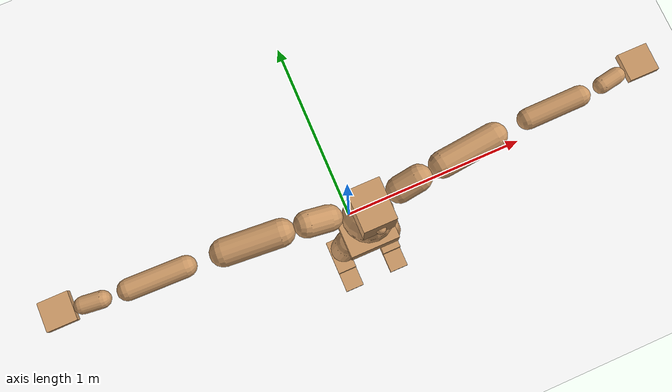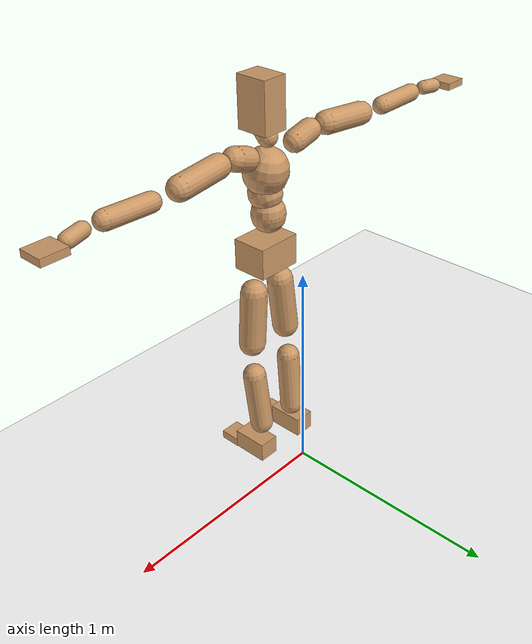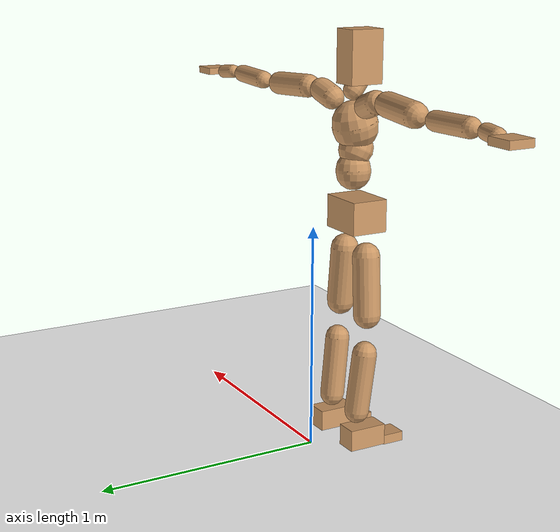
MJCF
<mujoco model="humanoid">
  <option integrator="implicitfast" />

  <visual>
    <global offwidth="1280" offheight="960" />
    <headlight active="1" ambient="0.34 0.34 0.34" diffuse="0.5 0.5 0.5" />
  </visual>

  <default>
    <joint damping="2" stiffness="2" armature="0.01" limited="true" solimplimit="0 .99 .01" />
    <geom condim="1" friction="0.7 0.005 0.0001" solimp=".99 .99 .003" solref="0.015 1" margin="0.001" rgba="0.8 0.6 .4 1" />
    <default class="smplcontact">
      <geom condim="3" friction="1. 0.005 0.0001" solref="0.015 1" solimp="0.98 0.98 0.001" priority="1" />
    </default>
    <default class="stiff_medium">
      <joint stiffness="10" />
    </default>
    <default class="stiff_medium_higher">
      <joint stiffness="50" />
    </default>
    <default class="stiff_high">
      <joint stiffness="100" />
    </default>
  </default>

  <asset>
    <texture type="skybox" builtin="gradient" rgb1="0.99 0.99 0.99" rgb2="0.608 0.828 0.892" width="100" />
    <texture builtin="flat" height="1278" mark="cross" markrgb="1 1 1" name="texgeom" random="0.01" rgb1="0.8 0.6 0.4" rgb2="0.8 0.6 0.4" type="cube" width="127" />
    <texture name="texplane" type="2d" builtin="checker" markrgb="1 1 1" rgb1="0.756 0.772 0.76" rgb2="0.6 0.6 0.6" width="100" height="100" />
    <material name="MatPlane" reflectance="0.5" texture="texplane" texrepeat="1 1" texuniform="true" />
    <material name="geom" texture="texgeom" texuniform="true" />
  </asset>

  <worldbody>
    <light name="tracking_light" pos="0 0 7" dir="0 0 -1" directional="true" cutoff="100" exponent="1" diffuse="1 1 1" specular="0.1 0.1 0.1" mode="trackcom" />
    <camera name="back" pos="0 3 2.4" xyaxes="-1 0 0 0 -1 2" mode="trackcom" />
    <camera name="side" pos="-3 0 2.4" xyaxes="0 -1 0 1 0 2" mode="trackcom" />
    <camera name="front_side" pos="-2.8 -2.8 0.8" xyaxes="0.5 -0.5 0 0.1 0.1 1" mode="trackcom" />
    <geom condim="3" name="floor" pos="0 0 0" rgba="1 1 1 1" size="100 100 .2" type="plane" material="MatPlane" />
    <body name="Pelvis" pos="-0.0018 -0.2233 1.05109" euler="90 0 0">
      <site name="Pelvis" size="0.01" />
      <freejoint name="Pelvis" />
      <geom type="box" pos="-0.0000 -0.0121 -0.0055" size="0.1069 0.0722 0.083" quat="1.0000 0.0000 0.0000 0.0000" density="3165.830099" name="Pelvis" />
      <body name="L_Hip" pos="0.0781875 -0.102825 -0.00765">
        <joint name="L_Hip_x" type="hinge" pos="0 0 0" axis="1 0 0" stiffness="12.190417346938776" range="-160.0 22.92" class="stiff_medium" damping="19.23943835853268" armature="0.013495335550763793"/>
        <joint name="L_Hip_y" type="hinge" pos="0 0 0" axis="0 1 0" stiffness="12.1624156122449" range="-70.0 70.0" class="stiff_medium" damping="12.013485255911053" armature="0.011866378571103066"/>
        <joint name="L_Hip_z" type="hinge" pos="0 0 0" axis="0 0 1" stiffness="12.164813061224491" range="-28.65 90.0" class="stiff_medium" damping="12.81394800146982" armature="0.013497721876857561"/>
        <geom type="capsule" density="2040.816327" fromto="0.0077625 -0.084375 -0.0010125 0.030825 -0.337725 -0.00405" size="0.0615" name="L_Hip" />
        <body name="L_Knee" pos="0.0385875 -0.4221 -0.0050625">
          <joint name="L_Knee_x" type="hinge" pos="0 0 0" axis="1 0 0" range="-5.16 171.89" damping="10.07682386271326" armature="0.013188848617403121" stiffness="2.4059714693877554"/>
          <joint name="L_Knee_y" type="hinge" pos="0 0 0" axis="0 1 0" range="-4.58 6.88" damping="9.486100019400165" armature="0.011596019506642559" stiffness="2.4250264693877552"/>
          <joint name="L_Knee_z" type="hinge" pos="0 0 0" axis="0 0 1" range="-6.88 4.58" damping="10.063496829521752" armature="0.013200099383969112" stiffness="2.3975664285714284"/>
          <geom type="capsule" density="1234.567901" fromto="-0.0030375 -0.08955 -0.0097875 -0.0122625 -0.3582 -0.039375" size="0.0541" name="L_Knee" />
          <body name="L_Ankle" pos="-0.0153 -0.44775 -0.0491625">
            <joint name="L_Ankle_x" type="hinge" pos="0 0 0" axis="1 0 0" range="-45.84 45.84" class="stiff_medium" damping="6.89753281842307" armature="0.011747130867095158" stiffness="11.250018673469388"/>
            <joint name="L_Ankle_y" type="hinge" pos="0 0 0" axis="0 1 0" range="-74.48 22.92" class="stiff_medium" damping="3.4392113884775433" armature="0.011682135831686723" stiffness="11.250011836734695"/>
            <joint name="L_Ankle_z" type="hinge" pos="0 0 0" axis="0 0 1" range="-4.58 4.58" class="stiff_medium" damping="6.751978545825224" armature="0.01125659611932941" stiffness="11.25"/>
            <geom type="box" pos="0.0262125 -0.0268875 0.027225" size="0.0483 0.0464 0.085" quat="1.0000 0.0000 0.0000 0.0000" density="449.071558" name="L_Ankle" class="smplcontact" />
            <body name="L_Toe" pos="0.0297 -0.062775 0.134213">
              <joint name="L_Toe_x" type="hinge" pos="0 0 0" axis="1 0 0" range="-91.67 22.92" armature="0.011009874139728062" damping="2.2258578936845064" stiffness="2.25"/>
              <joint name="L_Toe_y" type="hinge" pos="0 0 0" axis="0 1 0" range="-4.58 4.58" armature="0.010711537859158194" damping="2.1954935747164432" stiffness="2.25"/>
              <joint name="L_Toe_z" type="hinge" pos="0 0 0" axis="0 0 1" range="-4.58 4.58" armature="0.010108317957716393" damping="2.132778254055582" stiffness="2.25"/>
              <geom type="box" pos="-0.003375 0.0061875 0.0279" size="0.0478 0.02 0.0496" quat="1.0000 0.0000 0.0000 0.0000" density="423.206892" name="L_Toe" class="smplcontact" />
            </body>
          </body>
        </body>
      </body>
      <body name="R_Hip" pos="-0.0761625 -0.101813 -0.0048375">
        <joint name="R_Hip_x" type="hinge" pos="0 0 0" axis="1 0 0" stiffness="12.190417346938776" range="-160.0 22.92" class="stiff_medium" damping="19.23943835853268" armature="0.013495335550763793"/>
        <joint name="R_Hip_y" type="hinge" pos="0 0 0" axis="0 1 0" stiffness="12.1624156122449" range="-70.0 70.0" class="stiff_medium" damping="12.013485255911053" armature="0.011866378571103066"/>
        <joint name="R_Hip_z" type="hinge" pos="0 0 0" axis="0 0 1" stiffness="12.164813061224491" range="-90.0 28.65" class="stiff_medium" damping="12.81394800146982" armature="0.013497721876857561"/>
        <geom type="capsule" density="2040.816327" fromto="-0.0086625 -0.0860625 -0.002025 -0.034425 -0.344362 -0.0079875" size="0.0606" name="R_Hip" />
        <body name="R_Knee" pos="-0.0430875 -0.430425 -0.0100125">
          <joint name="R_Knee_x" type="hinge" pos="0 0 0" axis="1 0 0" range="-5.16 171.89" damping="10.07682386271326" armature="0.013188848617403121" stiffness="2.4059714693877554"/>
          <joint name="R_Knee_y" type="hinge" pos="0 0 0" axis="0 1 0" range="-6.88 4.58" damping="9.486100019400165" armature="0.011596019506642559" stiffness="2.4250264693877552"/>
          <joint name="R_Knee_z" type="hinge" pos="0 0 0" axis="0 0 1" range="-4.58 6.88" damping="10.063496829521752" armature="0.013200099383969112" stiffness="2.3975664285714284"/>
          <geom type="capsule" density="1234.567901" fromto="0.0036 -0.0896625 -0.0095625 0.014175 -0.358537 -0.038025" size="0.0541" name="R_Knee" />
          <body name="R_Ankle" pos="0.017775 -0.4482 -0.0475875">
            <joint name="R_Ankle_x" type="hinge" pos="0 0 0" axis="1 0 0" range="-45.84 45.84" class="stiff_medium" damping="6.89753281842307" armature="0.011747130867095158" stiffness="11.250018673469388"/>
            <joint name="R_Ankle_y" type="hinge" pos="0 0 0" axis="0 1 0" range="-22.92 74.48" class="stiff_medium" damping="3.4392113884775433" armature="0.011682135831686723" stiffness="11.250011836734695"/>
            <joint name="R_Ankle_z" type="hinge" pos="0 0 0" axis="0 0 1" range="-4.58 4.58" class="stiff_medium" damping="6.751978545825224" armature="0.01125659611932941" stiffness="11.25"/>
            <geom type="box" pos="-0.02385 -0.019575 0.0288" size="0.0483 0.0478 0.0865" quat="1.0000 0.0000 0.0000 0.0000" density="434.700981" name="R_Ankle" class="smplcontact" />
            <body name="R_Toe" pos="-0.028575 -0.0541125 0.138713">
              <joint name="R_Toe_x" type="hinge" pos="0 0 0" axis="1 0 0" range="-91.67 22.92" armature="0.011009874139728062" damping="2.2258578936845064" stiffness="2.25"/>
              <joint name="R_Toe_y" type="hinge" pos="0 0 0" axis="0 1 0" range="-4.58 4.58" armature="0.010711537859158194" damping="2.1954935747164432" stiffness="2.25"/>
              <joint name="R_Toe_z" type="hinge" pos="0 0 0" axis="0 0 1" range="-4.58 4.58" armature="0.010108317957716393" damping="2.132778254055582" stiffness="2.25"/>
              <geom type="box" pos="0.004725 0.0050625 0.0255375" size="0.0479 0.0216 0.0493" quat="1.0000 0.0000 0.0000 0.0000" density="407.384095" name="R_Toe" class="smplcontact" />
            </body>
          </body>
        </body>
      </body>
      <body name="Torso" pos="-0.0025 0.109 -0.0267">
        <joint name="Torso_x" type="hinge" pos="0 0 0" axis="1 0 0" range="-25.78 57.3" class="stiff_medium" damping="17.816617842535415" armature="0.01220444282408803" stiffness="11.55979291666667"/>
        <joint name="Torso_y" type="hinge" pos="0 0 0" axis="0 1 0" range="-57.3 57.3" class="stiff_high" damping="32.66648617457636" armature="0.023482633249027437" stiffness="113.6051595744681"/>
        <joint name="Torso_z" type="hinge" pos="0 0 0" axis="0 0 1" range="-34.38 34.38" class="stiff_high" damping="26.532055594632826" armature="0.016035100718302126" stiffness="109.75141136363638"/>
        <geom type="capsule" density="2040.816327" fromto="0.0025 0.0608 0.0005 0.003 0.0743 0.0006" size="0.0769" name="Torso" />
        <body name="Spine" pos="0.0055 0.1352 0.0011">
          <joint name="Spine_x" type="hinge" pos="0 0 0" axis="1 0 0" stiffness="11.652306458333332" range="-25.78 57.3" class="stiff_medium" damping="18.346849955919502" armature="0.012838923235543205"/>
          <joint name="Spine_y" type="hinge" pos="0 0 0" axis="0 1 0" stiffness="12.490174523809525" range="-57.3 57.3" class="stiff_high" damping="13.727844217436889" armature="0.02357524439747789"/>
          <joint name="Spine_z" type="hinge" pos="0 0 0" axis="0 0 1" stiffness="24.140002666666668" range="-34.38 34.38" class="stiff_high" damping="18.060617405335822" armature="0.018767022520783626"/>
          <geom type="capsule" density="2040.816327" fromto="0.0007 0.0238 0.0114 0.0008 0.0291 0.014" size="0.0755" name="Spine" />
          <body name="Chest" pos="0.0015 0.0529 0.0254">
            <joint name="Chest_x" type="hinge" pos="0 0 0" axis="1 0 0" stiffness="12.52777088888889" range="-25.78 57.3" class="stiff_medium" damping="19.3234206846418" armature="0.013246821899117765"/>
            <joint name="Chest_y" type="hinge" pos="0 0 0" axis="0 1 0" stiffness="14.856075609756099" range="-57.3 57.3" class="stiff_high" damping="14.973397185345428" armature="0.023580695741040242"/>
            <joint name="Chest_z" type="hinge" pos="0 0 0" axis="0 0 1" stiffness="24.504841860465113" range="-34.38 34.38" class="stiff_high" damping="18.77641315249792" armature="0.01998208789833815"/>
            <geom type="capsule" density="2040.816327" fromto="-0.0009 0.0682 -0.0173 -0.001 0.0833 -0.0212" size="0.1002" name="Chest" />
            <body name="Neck" pos="-0.0028 0.2139 -0.0429">
              <joint name="Neck_x" type="hinge" pos="0 0 0" axis="1 0 0" range="-28.65 57.3" class="stiff_medium_higher" damping="10.000000000000004" armature="0.01000000000000001" stiffness="50.0"/>
              <joint name="Neck_y" type="hinge" pos="0 0 0" axis="0 1 0" range="-40.11 40.11" class="stiff_medium_higher" damping="10.0" armature="0.01" stiffness="50.0"/>
              <joint name="Neck_z" type="hinge" pos="0 0 0" axis="0 0 1" range="-40.11 40.11" class="stiff_medium_higher" damping="10.000000000000009" armature="0.010000000000000018" stiffness="50.0"/>
              <geom type="capsule" density="1000" fromto="0.001 0.013 0.0103 0.0041 0.052 0.0411" size="0.0436" name="Neck" />
              <body name="Head" pos="0.0052 0.065 0.0513">
                <joint name="Head_x" type="hinge" pos="0 0 0" axis="1 0 0" range="-28.65 57.3" class="stiff_medium_higher" damping="2.000000000000005" armature="0.010000000000000049" stiffness="50.0"/>
                <joint name="Head_y" type="hinge" pos="0 0 0" axis="0 1 0" range="-40.11 40.11" class="stiff_medium_higher" damping="2.0" armature="0.010000000000000002" stiffness="50.0"/>
                <joint name="Head_z" type="hinge" pos="0 0 0" axis="0 0 1" range="-40.11 40.11" class="stiff_medium_higher" damping="2.0000000000000053" armature="0.010000000000000056" stiffness="50.0"/>
                <geom type="box" pos="-0.0042 0.0876 -0.0116" size="0.0606 0.1154 0.076" quat="1.0000 0.0000 0.0000 0.0000" density="1018.069894" name="Head" />
                <geom type="capsule" name="nose" size="0.02 0.01" pos="0 0.07 0.05" quat="1 0 0 0" mass="0" contype="0" conaffinity="0" />
              </body>
            </body>
            <body name="L_Thorax" pos="0.11032 0.17038 -0.04774">
              <joint name="L_Thorax_x" type="hinge" pos="0 0 0" axis="1 0 0" range="-10.89 4.58" class="stiff_medium_higher" damping="36.240858058789826" armature="0.018856138634744224" stiffness="87.06712295918368"/>
              <joint name="L_Thorax_y" type="hinge" pos="0 0 0" axis="0 1 0" range="-28.65 17.19" class="stiff_medium_higher" damping="40.96620891880995" armature="0.023898132129905863" stiffness="87.78041020408163"/>
              <joint name="L_Thorax_z" type="hinge" pos="0 0 0" axis="0 0 1" range="-31.51 40.11" class="stiff_medium_higher" damping="40.96835729355361" armature="0.023902786052476355" stiffness="87.77252448979593"/>
              <geom type="capsule" density="1000" fromto="0.02548 0.00854 -0.00252 0.10192 0.03416 -0.00994" size="0.0521" name="L_Thorax" />
              <body name="L_Shoulder" pos="0.1274 0.0427 -0.01246">
                <joint name="L_Shoulder_x" type="hinge" pos="0 0 0" axis="1 0 0" range="-97.4 97.4" class="stiff_medium" damping="10.216467793124714" armature="0.016750975720821137" stiffness="17.30848"/>
                <joint name="L_Shoulder_y" type="hinge" pos="0 0 0" axis="0 1 0" range="-108.86 80.21" class="stiff_medium" damping="12.210584630805666" armature="0.023662310849895677" stiffness="17.503030918367347"/>
                <joint name="L_Shoulder_z" type="hinge" pos="0 0 0" axis="0 0 1" range="-97.4 85.94" class="stiff_medium" damping="12.207996623471661" armature="0.023667800947755637" stiffness="17.491553877551024"/>
                <geom type="capsule" density="1000" fromto="0.07266 -0.00364 -0.0077 0.29078 -0.01428 -0.0308" size="0.0517" name="L_Shoulder" />
                <body name="L_Elbow" pos="0.36344 -0.01792 -0.0385">
                  <joint name="L_Elbow_x" type="hinge" pos="0 0 0" axis="1 0 0" range="-17.19 4.58" damping="7.586581525572945" armature="0.013620348817447635" stiffness="3.380601775510204"/>
                  <joint name="L_Elbow_y" type="hinge" pos="0 0 0" axis="0 1 0" range="-180.0 17.19" damping="9.758671052618116" armature="0.022523674987219192" stiffness="3.382455510204082"/>
                  <joint name="L_Elbow_z" type="hinge" pos="0 0 0" axis="0 0 1" range="-100.84 4.58" damping="9.760335979040736" armature="0.022552387617329524" stiffness="3.3793019183673465"/>
                  <geom type="capsule" density="1000" fromto="0.06972 0.00252 -0.00028 0.27916 0.01008 -0.00126" size="0.0405" name="L_Elbow" />
                  <body name="L_Wrist" pos="0.34888 0.0126 -0.00168">
                    <joint name="L_Wrist_x" type="hinge" pos="0 0 0" axis="1 0 0" range="-180.0 22.92" armature="0.01316855013958465" damping="2.8121939405270386" stiffness="3.002773530612245"/>
                    <joint name="L_Wrist_y" type="hinge" pos="0 0 0" axis="0 1 0" range="-17.19 17.19" armature="0.019145926143816046" damping="3.4076565933193717" stiffness="3.0325311428571426"/>
                    <joint name="L_Wrist_z" type="hinge" pos="0 0 0" axis="0 0 1" range="-22.92 22.92" armature="0.01946864082917072" damping="3.4294485001747024" stiffness="3.0205285306122445"/>
                    <geom type="capsule" density="1000" fromto="0.02352 -0.00224 -0.0042 0.09408 -0.0091 -0.0168" size="0.0318" name="L_Wrist" class="smplcontact" />
                    <body name="L_Hand" pos="0.1176 -0.01148 -0.02086">
                      <joint name="L_Hand_x" type="hinge" pos="0 0 0" axis="1 0 0" range="-17.19 17.19" armature="0.010418235140997597" damping="2.415411285673447" stiffness="2.8000000000000003"/>
                      <joint name="L_Hand_y" type="hinge" pos="0 0 0" axis="0 1 0" range="-51.57 51.57" armature="0.015057977012994219" damping="2.903871058996381" stiffness="2.8000000000000003"/>
                      <joint name="L_Hand_z" type="hinge" pos="0 0 0" axis="0 0 1" range="-91.67 91.67" armature="0.016294763602145653" damping="3.020772685456747" stiffness="2.8000000000000003"/>
                      <geom type="box" pos="0.06902 0.0014 -0.00812" size="0.0585 0.0158 0.0538" quat="1.0000 0.0000 0.0000 0.0000" density="400.552564" name="L_Hand" class="smplcontact" />
                    </body>
                  </body>
                </body>
              </body>
            </body>
            <body name="R_Thorax" pos="-0.11452 0.16632 -0.05404">
              <joint name="R_Thorax_x" type="hinge" pos="0 0 0" axis="1 0 0" range="-10.89 4.58" class="stiff_medium_higher" damping="36.240858058789826" armature="0.018856138634744224" stiffness="87.06712295918368"/>
              <joint name="R_Thorax_y" type="hinge" pos="0 0 0" axis="0 1 0" range="-17.19 28.65" class="stiff_medium_higher" damping="40.96620891880995" armature="0.023898132129905863" stiffness="87.78041020408163"/>
              <joint name="R_Thorax_z" type="hinge" pos="0 0 0" axis="0 0 1" range="-40.11 31.51" class="stiff_medium_higher" damping="40.96835729355361" armature="0.023902786052476355" stiffness="87.77252448979593"/>
              <geom type="capsule" density="1000" fromto="-0.02688 0.0091 -0.00252 -0.10752 0.0364 -0.01022" size="0.0511" name="R_Thorax" />
              <body name="R_Shoulder" pos="-0.1344 0.04564 -0.01274">
                <joint name="R_Shoulder_x" type="hinge" pos="0 0 0" axis="1 0 0" range="-97.4 97.4" class="stiff_medium" damping="10.216467793124714" armature="0.016750975720821137" stiffness="17.30848"/>
                <joint name="R_Shoulder_y" type="hinge" pos="0 0 0" axis="0 1 0" range="-80.21 108.86" class="stiff_medium" damping="12.210584630805666" armature="0.023662310849895677" stiffness="17.503030918367347"/>
                <joint name="R_Shoulder_z" type="hinge" pos="0 0 0" axis="0 0 1" range="-85.94 97.4" class="stiff_medium" damping="12.207996623471661" armature="0.023667800947755637" stiffness="17.491553877551024"/>
                <geom type="capsule" density="1000" fromto="-0.07098 -0.00378 -0.00602 -0.2842 -0.01498 -0.02394" size="0.0531" name="R_Shoulder" />
                <body name="R_Elbow" pos="-0.35518 -0.01862 -0.02996">
                  <joint name="R_Elbow_x" type="hinge" pos="0 0 0" axis="1 0 0" range="-17.19 4.58" damping="7.586581525572945" armature="0.013620348817447635" stiffness="3.380601775510204"/>
                  <joint name="R_Elbow_y" type="hinge" pos="0 0 0" axis="0 1 0" range="-17.19 180.0" damping="9.758671052618116" armature="0.022523674987219192" stiffness="3.382455510204082"/>
                  <joint name="R_Elbow_z" type="hinge" pos="0 0 0" axis="0 0 1" range="-4.58 100.84" damping="9.760335979040736" armature="0.022552387617329524" stiffness="3.3793019183673465"/>
                  <geom type="capsule" density="1000" fromto="-0.07154 0.00224 -0.00154 -0.28588 0.00868 -0.00616" size="0.0408" name="R_Elbow" />
                  <body name="R_Wrist" pos="-0.35742 0.01092 -0.00784">
                    <joint name="R_Wrist_x" type="hinge" pos="0 0 0" axis="1 0 0" range="-180.0 22.92" armature="0.01316855013958465" damping="2.8121939405270386" stiffness="3.002773530612245"/>
                    <joint name="R_Wrist_y" type="hinge" pos="0 0 0" axis="0 1 0" range="-17.19 17.19" armature="0.019145926143816046" damping="3.4076565933193717" stiffness="3.0325311428571426"/>
                    <joint name="R_Wrist_z" type="hinge" pos="0 0 0" axis="0 0 1" range="-22.92 22.92" armature="0.01946864082917072" damping="3.4294485001747024" stiffness="3.0205285306122445"/>
                    <geom type="capsule" density="1000" fromto="-0.02366 -0.00168 -0.00294 -0.09478 -0.00686 -0.01162" size="0.0326" name="R_Wrist" class="smplcontact" />
                    <body name="R_Hand" pos="-0.11844 -0.00854 -0.01442">
                      <joint name="R_Hand_x" type="hinge" pos="0 0 0" axis="1 0 0" range="-17.19 17.19" armature="0.010418235140997597" damping="2.415411285673447" stiffness="2.8000000000000003"/>
                      <joint name="R_Hand_y" type="hinge" pos="0 0 0" axis="0 1 0" range="-51.57 51.57" armature="0.015057977012994219" damping="2.903871058996381" stiffness="2.8000000000000003"/>
                      <joint name="R_Hand_z" type="hinge" pos="0 0 0" axis="0 0 1" range="-91.67 91.67" armature="0.016294763602145653" damping="3.020772685456747" stiffness="2.8000000000000003"/>
                      <geom type="box" pos="-0.06468 -0.00126 -0.01106" size="0.0569 0.0164 0.0546" quat="1.0000 0.0000 0.0000 0.0000" density="403.679611" name="R_Hand" class="smplcontact" />
                    </body>
                  </body>
                </body>
              </body>
            </body>
          </body>
        </body>
      </body>
    </body>
  </worldbody>
  <actuator>
    <general name="L_Hip_x" joint="L_Hip_x" biastype="affine" gainprm="350.267339766903" biasprm="-262.4898695344799 -219.42751224489797 -2.565258447804357" ctrllimited="true" ctrlrange="-1 1" forcerange="-438.85502448979594 438.85502448979594" />
    <general name="L_Hip_y" joint="L_Hip_y" biastype="affine" gainprm="267.4654887613407" biasprm="0.0 -218.9234810204082 -2.4026970511822108" ctrllimited="true" ctrlrange="-1 1" forcerange="-437.8469620408164 437.8469620408164" />
    <general name="L_Hip_z" joint="L_Hip_z" biastype="affine" gainprm="226.72168417679922" biasprm="117.23030193212499 -218.96663510204084 -2.562789600293964" ctrllimited="true" ctrlrange="-1 1" forcerange="-437.9332702040817 437.9332702040817" />
    <general name="L_Knee_x" joint="L_Knee_x" biastype="affine" gainprm="334.5617487428154" biasprm="315.0606064269393 -216.53743224489799 -2.519205965678315" ctrllimited="true" ctrlrange="-1 1" forcerange="-433.07486448979597 433.07486448979597" />
    <general name="L_Knee_y" joint="L_Knee_y" biastype="affine" gainprm="21.82684590193453" biasprm="4.380606071068885 -218.25238224489797 -2.3715250048500414" ctrllimited="true" ctrlrange="-1 1" forcerange="-436.50476448979595 436.50476448979595" />
    <general name="L_Knee_z" joint="L_Knee_z" biastype="affine" gainprm="21.579687329883924" biasprm="-4.331001820133772 -215.78097857142856 -2.515874207380438" ctrllimited="true" ctrlrange="-1 1" forcerange="-431.5619571428571 431.5619571428571" />
    <general name="L_Ankle_x" joint="L_Ankle_x" biastype="affine" gainprm="81.00610103169612" biasprm="0.0 -101.2501680612245 -2.2991776061410234" ctrllimited="true" ctrlrange="-1 1" forcerange="-202.500336122449 202.500336122449" />
    <general name="L_Ankle_y" joint="L_Ankle_y" biastype="affine" gainprm="86.06009430266938" biasprm="-45.557068400879196 -101.25010653061226 -2.292807592318362" ctrllimited="true" ctrlrange="-1 1" forcerange="-202.5002130612245 202.5002130612245" />
    <general name="L_Ankle_z" joint="L_Ankle_z" biastype="affine" gainprm="8.093528073810704" biasprm="0.0 -101.25 -2.250659515275075" ctrllimited="true" ctrlrange="-1 1" forcerange="-202.5 202.5" />
    <general name="L_Toe_x" joint="L_Toe_x" biastype="affine" gainprm="80.99889798934223" biasprm="-48.59651136021711 -81.0 -0.8903431574738025" ctrllimited="true" ctrlrange="-1 1" forcerange="-162.0 162.0" />
    <general name="L_Toe_y" joint="L_Toe_y" biastype="affine" gainprm="6.474822459048563" biasprm="0.0 -81.0 -0.8781974298865773" ctrllimited="true" ctrlrange="-1 1" forcerange="-162.0 162.0" />
    <general name="L_Toe_z" joint="L_Toe_z" biastype="affine" gainprm="6.474822459048563" biasprm="0.0 -81.0 -0.8531113016222328" ctrllimited="true" ctrlrange="-1 1" forcerange="-162.0 162.0" />
    <general name="R_Hip_x" joint="R_Hip_x" biastype="affine" gainprm="350.267339766903" biasprm="-262.4898695344799 -219.42751224489797 -2.565258447804357" ctrllimited="true" ctrlrange="-1 1" forcerange="-438.85502448979594 438.85502448979594" />
    <general name="R_Hip_y" joint="R_Hip_y" biastype="affine" gainprm="267.4654887613407" biasprm="0.0 -218.9234810204082 -2.4026970511822108" ctrllimited="true" ctrlrange="-1 1" forcerange="-437.8469620408164 437.8469620408164" />
    <general name="R_Hip_z" joint="R_Hip_z" biastype="affine" gainprm="226.72168417679922" biasprm="-117.23030193212499 -218.96663510204084 -2.562789600293964" ctrllimited="true" ctrlrange="-1 1" forcerange="-437.9332702040817 437.9332702040817" />
    <general name="R_Knee_x" joint="R_Knee_x" biastype="affine" gainprm="334.5617487428154" biasprm="315.0606064269393 -216.53743224489799 -2.519205965678315" ctrllimited="true" ctrlrange="-1 1" forcerange="-433.07486448979597 433.07486448979597" />
    <general name="R_Knee_y" joint="R_Knee_y" biastype="affine" gainprm="21.82684590193453" biasprm="-4.380606071068885 -218.25238224489797 -2.3715250048500414" ctrllimited="true" ctrlrange="-1 1" forcerange="-436.50476448979595 436.50476448979595" />
    <general name="R_Knee_z" joint="R_Knee_z" biastype="affine" gainprm="21.579687329883924" biasprm="4.331001820133772 -215.78097857142856 -2.515874207380438" ctrllimited="true" ctrlrange="-1 1" forcerange="-431.5619571428571 431.5619571428571" />
    <general name="R_Ankle_x" joint="R_Ankle_x" biastype="affine" gainprm="81.00610103169612" biasprm="0.0 -101.2501680612245 -2.2991776061410234" ctrllimited="true" ctrlrange="-1 1" forcerange="-202.500336122449 202.500336122449" />
    <general name="R_Ankle_y" joint="R_Ankle_y" biastype="affine" gainprm="86.06009430266938" biasprm="45.557068400879196 -101.25010653061226 -2.292807592318362" ctrllimited="true" ctrlrange="-1 1" forcerange="-202.5002130612245 202.5002130612245" />
    <general name="R_Ankle_z" joint="R_Ankle_z" biastype="affine" gainprm="8.093528073810704" biasprm="0.0 -101.25 -2.250659515275075" ctrllimited="true" ctrlrange="-1 1" forcerange="-202.5 202.5" />
    <general name="R_Toe_x" joint="R_Toe_x" biastype="affine" gainprm="80.99889798934223" biasprm="-48.59651136021711 -81.0 -0.8903431574738025" ctrllimited="true" ctrlrange="-1 1" forcerange="-162.0 162.0" />
    <general name="R_Toe_y" joint="R_Toe_y" biastype="affine" gainprm="6.474822459048563" biasprm="0.0 -81.0 -0.8781974298865773" ctrllimited="true" ctrlrange="-1 1" forcerange="-162.0 162.0" />
    <general name="R_Toe_z" joint="R_Toe_z" biastype="affine" gainprm="6.474822459048563" biasprm="0.0 -81.0 -0.8531113016222328" ctrllimited="true" ctrlrange="-1 1" forcerange="-162.0 162.0" />
    <general name="Torso_x" joint="Torso_x" biastype="affine" gainprm="201.14310764492842" biasprm="76.31235860577928 -277.43503000000004 -4.751098091342778" ctrllimited="true" ctrlrange="-1 1" forcerange="-416.1525450000001 416.1525450000001" />
    <general name="Torso_y" joint="Torso_y" biastype="affine" gainprm="272.67246693299046" biasprm="0.0 -272.65238297872344 -6.533297234915273" ctrllimited="true" ctrlrange="-1 1" forcerange="-408.9785744680852 408.9785744680852" />
    <general name="Torso_z" joint="Torso_z" biastype="affine" gainprm="158.05367395985348" biasprm="0.0 -263.4033872727273 -5.306411118926565" ctrllimited="true" ctrlrange="-1 1" forcerange="-395.10508090909093 395.10508090909093" />
    <general name="Spine_x" joint="Spine_x" biastype="affine" gainprm="202.75286496534218" biasprm="76.9230898375973 -279.655355 -4.892493321578534" ctrllimited="true" ctrlrange="-1 1" forcerange="-419.4830325 419.4830325" />
    <general name="Spine_y" joint="Spine_y" biastype="affine" gainprm="299.7862696190556" biasprm="0.0 -299.7641885714286 -6.8639221087184445" ctrllimited="true" ctrlrange="-1 1" forcerange="-449.6462828571429 449.6462828571429" />
    <general name="Spine_z" joint="Spine_z" biastype="affine" gainprm="173.82082214076556" biasprm="0.0 -289.680032 -6.020205801778608" ctrllimited="true" ctrlrange="-1 1" forcerange="-434.520048 434.520048" />
    <general name="Chest_x" joint="Chest_x" biastype="affine" gainprm="217.98615136277013" biasprm="82.70249748380492 -300.6665013333334 -5.152912182571146" ctrllimited="true" ctrlrange="-1 1" forcerange="-450.999752 450.999752" />
    <general name="Chest_y" joint="Chest_y" biastype="affine" gainprm="356.57207829543177" biasprm="0.0 -356.5458146341464 -7.486698592672714" ctrllimited="true" ctrlrange="-1 1" forcerange="-534.8187219512196 534.8187219512196" />
    <general name="Chest_z" joint="Chest_z" biastype="affine" gainprm="176.44785783296902" biasprm="0.0 -294.0581023255814 -6.258804384165973" ctrllimited="true" ctrlrange="-1 1" forcerange="-441.08715348837205 441.08715348837205" />
    <general name="Neck_x" joint="Neck_x" biastype="affine" gainprm="27.00198885760427" biasprm="9.000662952534757 -36.0 -0.8000000000000004" ctrllimited="true" ctrlrange="-1 1" forcerange="-72.0 72.0" />
    <general name="Neck_y" joint="Neck_y" biastype="affine" gainprm="25.20185626709732" biasprm="0.0 -36.0 -0.8" ctrllimited="true" ctrlrange="-1 1" forcerange="-72.0 72.0" />
    <general name="Neck_z" joint="Neck_z" biastype="affine" gainprm="25.20185626709732" biasprm="0.0 -36.0 -0.8000000000000007" ctrllimited="true" ctrlrange="-1 1" forcerange="-72.0 72.0" />
    <general name="Head_x" joint="Head_x" biastype="affine" gainprm="18.001325905069514" biasprm="6.000441968356505 -24.0 -0.800000000000002" ctrllimited="true" ctrlrange="-1 1" forcerange="-48.0 48.0" />
    <general name="Head_y" joint="Head_y" biastype="affine" gainprm="16.801237511398213" biasprm="0.0 -24.0 -0.8" ctrllimited="true" ctrlrange="-1 1" forcerange="-48.0 48.0" />
    <general name="Head_z" joint="Head_z" biastype="affine" gainprm="16.801237511398213" biasprm="0.0 -24.0 -0.8000000000000022" ctrllimited="true" ctrlrange="-1 1" forcerange="-48.0 48.0" />
    <general name="L_Thorax_x" joint="L_Thorax_x" biastype="affine" gainprm="28.21000227853141" biasprm="-11.506471517616887 -208.96109510204082 -2.899268644703186" ctrllimited="true" ctrlrange="-1 1" forcerange="-417.92219020408163 417.92219020408163" />
    <general name="L_Thorax_y" joint="L_Thorax_y" biastype="affine" gainprm="84.27540118209936" biasprm="-21.06885029552484 -210.6729844897959 -3.277296713504796" ctrllimited="true" ctrlrange="-1 1" forcerange="-421.3459689795918 421.3459689795918" />
    <general name="L_Thorax_z" joint="L_Thorax_z" biastype="affine" gainprm="131.65929338702185" biasprm="15.809409705785923 -210.6540587755102 -3.2774685834842887" ctrllimited="true" ctrlrange="-1 1" forcerange="-421.3081175510204 421.3081175510204" />
    <general name="L_Shoulder_x" joint="L_Shoulder_x" biastype="affine" gainprm="141.23310021032776" biasprm="0.0 -83.080704 -2.724391411499924" ctrllimited="true" ctrlrange="-1 1" forcerange="-166.161408 166.161408" />
    <general name="L_Shoulder_y" joint="L_Shoulder_y" biastype="affine" gainprm="138.61955280584408" biasprm="-21.005184259202586 -84.01454840816328 -3.256155901548178" ctrllimited="true" ctrlrange="-1 1" forcerange="-168.02909681632656 168.02909681632656" />
    <general name="L_Shoulder_z" joint="L_Shoulder_z" biastype="affine" gainprm="134.33037540273168" biasprm="-8.396564318290107 -83.9594586122449 -3.25546576625911" ctrllimited="true" ctrlrange="-1 1" forcerange="-167.9189172244898 167.9189172244898" />
    <general name="L_Elbow_x" joint="L_Elbow_x" biastype="affine" gainprm="23.120771250680953" biasprm="-13.39241733904855 -121.70166391836734 -1.2138530440916713" ctrllimited="true" ctrlrange="-1 1" forcerange="-243.4033278367347 243.4033278367347" />
    <general name="L_Elbow_y" joint="L_Elbow_y" biastype="affine" gainprm="209.53995807470082" biasprm="-173.0067476755517 -121.76839836734695 -1.5613873684188988" ctrllimited="true" ctrlrange="-1 1" forcerange="-243.5367967346939 243.5367967346939" />
    <general name="L_Elbow_z" joint="L_Elbow_z" biastype="affine" gainprm="111.91798423395207" biasprm="-102.19337091975173 -121.65486906122447 -1.5616537566465176" ctrllimited="true" ctrlrange="-1 1" forcerange="-243.30973812244895 243.30973812244895" />
    <general name="L_Wrist_x" joint="L_Wrist_x" biastype="affine" gainprm="31.904067455407095" biasprm="-24.696880129584795 -18.01664118367347 -1.1248775762108154" ctrllimited="true" ctrlrange="-1 1" forcerange="-36.03328236734694 36.03328236734694" />
    <general name="L_Wrist_y" joint="L_Wrist_y" biastype="affine" gainprm="5.458958141984436" biasprm="0.0 -18.195186857142858 -1.3630626373277488" ctrllimited="true" ctrlrange="-1 1" forcerange="-36.390373714285715 36.390373714285715" />
    <general name="L_Wrist_z" joint="L_Wrist_z" biastype="affine" gainprm="7.249802464681568" biasprm="0.0 -18.123171183673467 -1.371779400069881" ctrllimited="true" ctrlrange="-1 1" forcerange="-36.246342367346934 36.246342367346934" />
    <general name="L_Hand_x" joint="L_Hand_x" biastype="affine" gainprm="5.040371253419465" biasprm="0.0 -16.8 -0.9661645142693788" ctrllimited="true" ctrlrange="-1 1" forcerange="-33.6 33.6" />
    <general name="L_Hand_y" joint="L_Hand_y" biastype="affine" gainprm="15.121113760258392" biasprm="0.0 -16.8 -1.1615484235985525" ctrllimited="true" ctrlrange="-1 1" forcerange="-33.6 33.6" />
    <general name="L_Hand_z" joint="L_Hand_z" biastype="affine" gainprm="26.879047865093792" biasprm="0.0 -16.8 -1.208309074182699" ctrllimited="true" ctrlrange="-1 1" forcerange="-33.6 33.6" />
    <general name="R_Thorax_x" joint="R_Thorax_x" biastype="affine" gainprm="28.21000227853141" biasprm="-11.506471517616887 -208.96109510204082 -2.899268644703186" ctrllimited="true" ctrlrange="-1 1" forcerange="-417.92219020408163 417.92219020408163" />
    <general name="R_Thorax_y" joint="R_Thorax_y" biastype="affine" gainprm="84.27540118209936" biasprm="21.068850295524825 -210.6729844897959 -3.277296713504796" ctrllimited="true" ctrlrange="-1 1" forcerange="-421.3459689795918 421.3459689795918" />
    <general name="R_Thorax_z" joint="R_Thorax_z" biastype="affine" gainprm="131.65929338702185" biasprm="-15.809409705785923 -210.6540587755102 -3.2774685834842887" ctrllimited="true" ctrlrange="-1 1" forcerange="-421.3081175510204 421.3081175510204" />
    <general name="R_Shoulder_x" joint="R_Shoulder_x" biastype="affine" gainprm="141.23310021032776" biasprm="0.0 -83.080704 -2.724391411499924" ctrllimited="true" ctrlrange="-1 1" forcerange="-166.161408 166.161408" />
    <general name="R_Shoulder_y" joint="R_Shoulder_y" biastype="affine" gainprm="138.61955280584408" biasprm="21.005184259202586 -84.01454840816328 -3.256155901548178" ctrllimited="true" ctrlrange="-1 1" forcerange="-168.02909681632656 168.02909681632656" />
    <general name="R_Shoulder_z" joint="R_Shoulder_z" biastype="affine" gainprm="134.33037540273168" biasprm="8.396564318290089 -83.9594586122449 -3.25546576625911" ctrllimited="true" ctrlrange="-1 1" forcerange="-167.9189172244898 167.9189172244898" />
    <general name="R_Elbow_x" joint="R_Elbow_x" biastype="affine" gainprm="23.120771250680953" biasprm="-13.39241733904855 -121.70166391836734 -1.2138530440916713" ctrllimited="true" ctrlrange="-1 1" forcerange="-243.4033278367347 243.4033278367347" />
    <general name="R_Elbow_y" joint="R_Elbow_y" biastype="affine" gainprm="209.53995807470082" biasprm="173.0067476755517 -121.76839836734695 -1.5613873684188988" ctrllimited="true" ctrlrange="-1 1" forcerange="-243.5367967346939 243.5367967346939" />
    <general name="R_Elbow_z" joint="R_Elbow_z" biastype="affine" gainprm="111.91798423395207" biasprm="102.19337091975173 -121.65486906122447 -1.5616537566465176" ctrllimited="true" ctrlrange="-1 1" forcerange="-243.30973812244895 243.30973812244895" />
    <general name="R_Wrist_x" joint="R_Wrist_x" biastype="affine" gainprm="31.904067455407095" biasprm="-24.696880129584795 -18.01664118367347 -1.1248775762108154" ctrllimited="true" ctrlrange="-1 1" forcerange="-36.03328236734694 36.03328236734694" />
    <general name="R_Wrist_y" joint="R_Wrist_y" biastype="affine" gainprm="5.458958141984436" biasprm="0.0 -18.195186857142858 -1.3630626373277488" ctrllimited="true" ctrlrange="-1 1" forcerange="-36.390373714285715 36.390373714285715" />
    <general name="R_Wrist_z" joint="R_Wrist_z" biastype="affine" gainprm="7.249802464681568" biasprm="0.0 -18.123171183673467 -1.371779400069881" ctrllimited="true" ctrlrange="-1 1" forcerange="-36.246342367346934 36.246342367346934" />
    <general name="R_Hand_x" joint="R_Hand_x" biastype="affine" gainprm="5.040371253419465" biasprm="0.0 -16.8 -0.9661645142693788" ctrllimited="true" ctrlrange="-1 1" forcerange="-33.6 33.6" />
    <general name="R_Hand_y" joint="R_Hand_y" biastype="affine" gainprm="15.121113760258392" biasprm="0.0 -16.8 -1.1615484235985525" ctrllimited="true" ctrlrange="-1 1" forcerange="-33.6 33.6" />
    <general name="R_Hand_z" joint="R_Hand_z" biastype="affine" gainprm="26.879047865093792" biasprm="0.0 -16.8 -1.208309074182699" ctrllimited="true" ctrlrange="-1 1" forcerange="-33.6 33.6" />
  </actuator>
  <contact>
    <exclude body1="Torso" body2="Chest" />
    <exclude body1="Head" body2="Chest" />
    <exclude body1="R_Knee" body2="R_Toe" />
    <exclude body1="R_Knee" body2="L_Ankle" />
    <exclude body1="R_Knee" body2="L_Toe" />
    <exclude body1="L_Knee" body2="L_Toe" />
    <exclude body1="L_Knee" body2="R_Ankle" />
    <exclude body1="L_Knee" body2="R_Toe" />
    <exclude body1="L_Shoulder" body2="Chest" />
    <exclude body1="R_Shoulder" body2="Chest" />
  </contact>
  <sensor>
    <framelinvel name="sensor_Pelvis_framelinvel" objtype="xbody" objname="Pelvis" />
    <framelinvel name="sensor_L_Hip_framelinvel" objtype="xbody" objname="L_Hip" />
    <framelinvel name="sensor_L_Knee_framelinvel" objtype="xbody" objname="L_Knee" />
    <framelinvel name="sensor_L_Ankle_framelinvel" objtype="xbody" objname="L_Ankle" />
    <framelinvel name="sensor_L_Toe_framelinvel" objtype="xbody" objname="L_Toe" />
    <framelinvel name="sensor_R_Hip_framelinvel" objtype="xbody" objname="R_Hip" />
    <framelinvel name="sensor_R_Knee_framelinvel" objtype="xbody" objname="R_Knee" />
    <framelinvel name="sensor_R_Ankle_framelinvel" objtype="xbody" objname="R_Ankle" />
    <framelinvel name="sensor_R_Toe_framelinvel" objtype="xbody" objname="R_Toe" />
    <framelinvel name="sensor_Torso_framelinvel" objtype="xbody" objname="Torso" />
    <framelinvel name="sensor_Spine_framelinvel" objtype="xbody" objname="Spine" />
    <framelinvel name="sensor_Chest_framelinvel" objtype="xbody" objname="Chest" />
    <framelinvel name="sensor_Neck_framelinvel" objtype="xbody" objname="Neck" />
    <framelinvel name="sensor_Head_framelinvel" objtype="xbody" objname="Head" />
    <framelinvel name="sensor_L_Thorax_framelinvel" objtype="xbody" objname="L_Thorax" />
    <framelinvel name="sensor_L_Shoulder_framelinvel" objtype="xbody" objname="L_Shoulder" />
    <framelinvel name="sensor_L_Elbow_framelinvel" objtype="xbody" objname="L_Elbow" />
    <framelinvel name="sensor_L_Wrist_framelinvel" objtype="xbody" objname="L_Wrist" />
    <framelinvel name="sensor_L_Hand_framelinvel" objtype="xbody" objname="L_Hand" />
    <framelinvel name="sensor_R_Thorax_framelinvel" objtype="xbody" objname="R_Thorax" />
    <framelinvel name="sensor_R_Shoulder_framelinvel" objtype="xbody" objname="R_Shoulder" />
    <framelinvel name="sensor_R_Elbow_framelinvel" objtype="xbody" objname="R_Elbow" />
    <framelinvel name="sensor_R_Wrist_framelinvel" objtype="xbody" objname="R_Wrist" />
    <framelinvel name="sensor_R_Hand_framelinvel" objtype="xbody" objname="R_Hand" />
    <frameangvel name="sensor_Pelvis_frameangvel" objtype="xbody" objname="Pelvis" />
    <frameangvel name="sensor_L_Hip_frameangvel" objtype="xbody" objname="L_Hip" />
    <frameangvel name="sensor_L_Knee_frameangvel" objtype="xbody" objname="L_Knee" />
    <frameangvel name="sensor_L_Ankle_frameangvel" objtype="xbody" objname="L_Ankle" />
    <frameangvel name="sensor_L_Toe_frameangvel" objtype="xbody" objname="L_Toe" />
    <frameangvel name="sensor_R_Hip_frameangvel" objtype="xbody" objname="R_Hip" />
    <frameangvel name="sensor_R_Knee_frameangvel" objtype="xbody" objname="R_Knee" />
    <frameangvel name="sensor_R_Ankle_frameangvel" objtype="xbody" objname="R_Ankle" />
    <frameangvel name="sensor_R_Toe_frameangvel" objtype="xbody" objname="R_Toe" />
    <frameangvel name="sensor_Torso_frameangvel" objtype="xbody" objname="Torso" />
    <frameangvel name="sensor_Spine_frameangvel" objtype="xbody" objname="Spine" />
    <frameangvel name="sensor_Chest_frameangvel" objtype="xbody" objname="Chest" />
    <frameangvel name="sensor_Neck_frameangvel" objtype="xbody" objname="Neck" />
    <frameangvel name="sensor_Head_frameangvel" objtype="xbody" objname="Head" />
    <frameangvel name="sensor_L_Thorax_frameangvel" objtype="xbody" objname="L_Thorax" />
    <frameangvel name="sensor_L_Shoulder_frameangvel" objtype="xbody" objname="L_Shoulder" />
    <frameangvel name="sensor_L_Elbow_frameangvel" objtype="xbody" objname="L_Elbow" />
    <frameangvel name="sensor_L_Wrist_frameangvel" objtype="xbody" objname="L_Wrist" />
    <frameangvel name="sensor_L_Hand_frameangvel" objtype="xbody" objname="L_Hand" />
    <frameangvel name="sensor_R_Thorax_frameangvel" objtype="xbody" objname="R_Thorax" />
    <frameangvel name="sensor_R_Shoulder_frameangvel" objtype="xbody" objname="R_Shoulder" />
    <frameangvel name="sensor_R_Elbow_frameangvel" objtype="xbody" objname="R_Elbow" />
    <frameangvel name="sensor_R_Wrist_frameangvel" objtype="xbody" objname="R_Wrist" />
    <frameangvel name="sensor_R_Hand_frameangvel" objtype="xbody" objname="R_Hand" />
    <subtreelinvel name="Chest_subtreelinvel" body="Chest" />
    <gyro name="Pelvis_gyro" site="Pelvis" />
  </sensor>
</mujoco>
